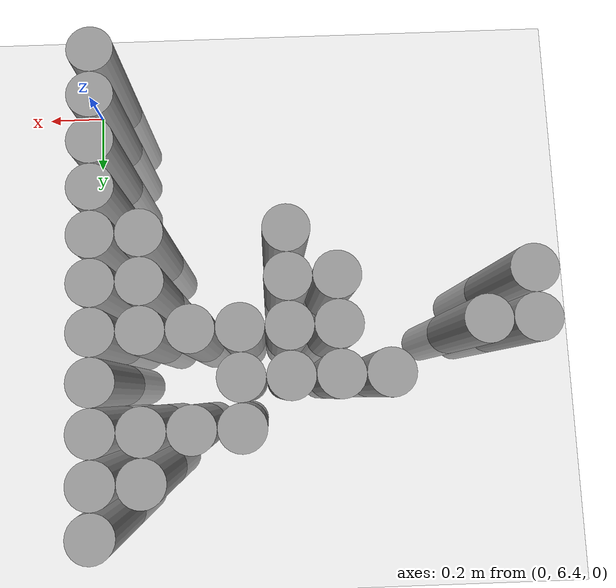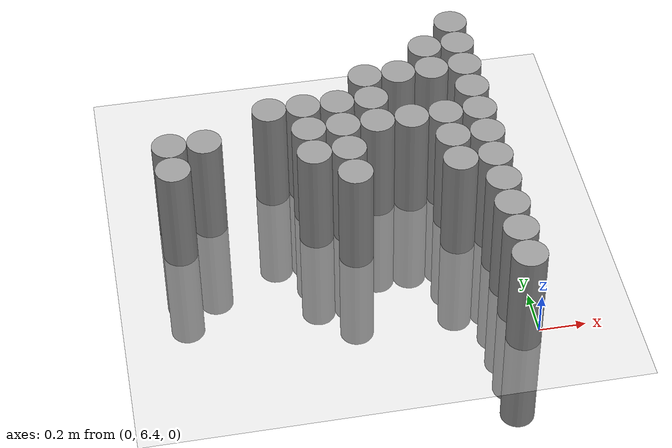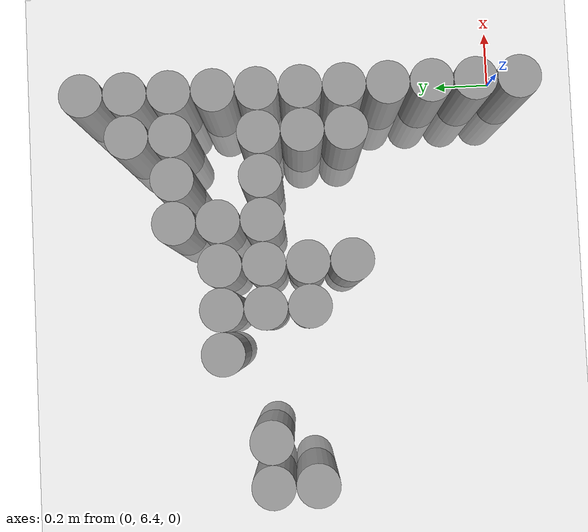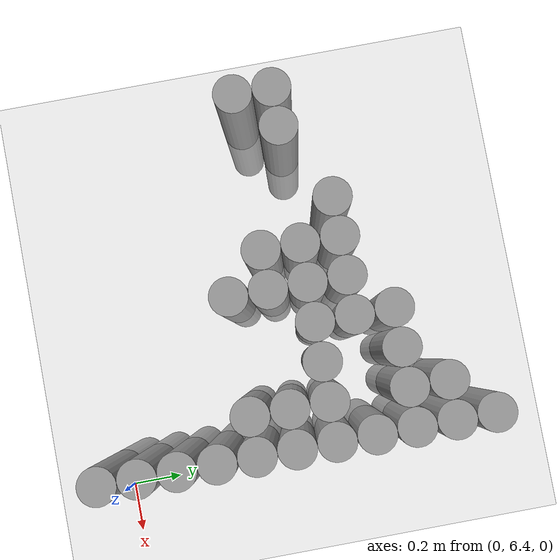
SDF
<sdf version="1.6">
 <world name="default">
  <model name="ground_plane">
   <static>1</static>
   <static>1</static>
   <link name="link">
    <collision name="collision">
     <geometry><plane><normal>0 0 1</normal><size>100 100</size></plane></geometry>
     <surface><friction><ode><mu>100</mu><mu2>50</mu2></ode></friction></surface>
    </collision>
    <visual name="visual">
     <cast_shadows>0</cast_shadows>
     <geometry><plane><normal>0 0 1</normal><size>100 100</size></plane></geometry>
     <material>
      <script><uri>file://media/materials/scripts/gazebo.material</uri><name>Gazebo/Grey</name></script>
     </material>
    </visual>
   </link>
  </model>
  <model name="unit_cylinder_181">
   <static>1</static>
   <pose>-1.425000 7.125000 0.000000 0.000000 0.000000 0.000000</pose>
   <link name="link">
    <inertial>
     <mass>1</mass>
     <inertia><ixx>0.145833</ixx><ixy>0</ixy><ixz>0</ixz><iyy>0.145833</iyy><iyz>0</iyz><izz>0.125</izz></inertia>
    </inertial>
    <collision name="collision">
     <geometry><cylinder><radius>0.075000</radius><length>1</length></cylinder></geometry>
    </collision>
    <visual name="visual">
     <geometry><cylinder><radius>0.075000</radius><length>1</length></cylinder></geometry>
     <material>
      <script><name>Gazebo/Grey</name><uri>file://media/materials/scripts/gazebo.material</uri></script>
     </material>
    </visual>
   </link>
  </model>
  <model name="unit_cylinder_182">
   <static>1</static>
   <pose>-1.425000 7.275000 0.000000 0.000000 0.000000 0.000000</pose>
   <link name="link">
    <inertial>
     <mass>1</mass>
     <inertia><ixx>0.145833</ixx><ixy>0</ixy><ixz>0</ixz><iyy>0.145833</iyy><iyz>0</iyz><izz>0.125</izz></inertia>
    </inertial>
    <collision name="collision">
     <geometry><cylinder><radius>0.075000</radius><length>1</length></cylinder></geometry>
    </collision>
    <visual name="visual">
     <geometry><cylinder><radius>0.075000</radius><length>1</length></cylinder></geometry>
     <material>
      <script><name>Gazebo/Grey</name><uri>file://media/materials/scripts/gazebo.material</uri></script>
     </material>
    </visual>
   </link>
  </model>
  <model name="unit_cylinder_186">
   <static>1</static>
   <pose>-1.275000 7.275000 0.000000 0.000000 0.000000 0.000000</pose>
   <link name="link">
    <inertial>
     <mass>1</mass>
     <inertia><ixx>0.145833</ixx><ixy>0</ixy><ixz>0</ixz><iyy>0.145833</iyy><iyz>0</iyz><izz>0.125</izz></inertia>
    </inertial>
    <collision name="collision">
     <geometry><cylinder><radius>0.075000</radius><length>1</length></cylinder></geometry>
    </collision>
    <visual name="visual">
     <geometry><cylinder><radius>0.075000</radius><length>1</length></cylinder></geometry>
     <material>
      <script><name>Gazebo/Grey</name><uri>file://media/materials/scripts/gazebo.material</uri></script>
     </material>
    </visual>
   </link>
  </model>
  <model name="unit_cylinder_195">
   <static>1</static>
   <pose>-0.975000 7.425000 0.000000 0.000000 0.000000 0.000000</pose>
   <link name="link">
    <inertial>
     <mass>1</mass>
     <inertia><ixx>0.145833</ixx><ixy>0</ixy><ixz>0</ixz><iyy>0.145833</iyy><iyz>0</iyz><izz>0.125</izz></inertia>
    </inertial>
    <collision name="collision">
     <geometry><cylinder><radius>0.075000</radius><length>1</length></cylinder></geometry>
    </collision>
    <visual name="visual">
     <geometry><cylinder><radius>0.075000</radius><length>1</length></cylinder></geometry>
     <material>
      <script><name>Gazebo/Grey</name><uri>file://media/materials/scripts/gazebo.material</uri></script>
     </material>
    </visual>
   </link>
  </model>
  <model name="unit_cylinder_198">
   <static>1</static>
   <pose>-0.825000 7.125000 0.000000 0.000000 0.000000 0.000000</pose>
   <link name="link">
    <inertial>
     <mass>1</mass>
     <inertia><ixx>0.145833</ixx><ixy>0</ixy><ixz>0</ixz><iyy>0.145833</iyy><iyz>0</iyz><izz>0.125</izz></inertia>
    </inertial>
    <collision name="collision">
     <geometry><cylinder><radius>0.075000</radius><length>1</length></cylinder></geometry>
    </collision>
    <visual name="visual">
     <geometry><cylinder><radius>0.075000</radius><length>1</length></cylinder></geometry>
     <material>
      <script><name>Gazebo/Grey</name><uri>file://media/materials/scripts/gazebo.material</uri></script>
     </material>
    </visual>
   </link>
  </model>
  <model name="unit_cylinder_199">
   <static>1</static>
   <pose>-0.825000 7.275000 0.000000 0.000000 0.000000 0.000000</pose>
   <link name="link">
    <inertial>
     <mass>1</mass>
     <inertia><ixx>0.145833</ixx><ixy>0</ixy><ixz>0</ixz><iyy>0.145833</iyy><iyz>0</iyz><izz>0.125</izz></inertia>
    </inertial>
    <collision name="collision">
     <geometry><cylinder><radius>0.075000</radius><length>1</length></cylinder></geometry>
    </collision>
    <visual name="visual">
     <geometry><cylinder><radius>0.075000</radius><length>1</length></cylinder></geometry>
     <material>
      <script><name>Gazebo/Grey</name><uri>file://media/materials/scripts/gazebo.material</uri></script>
     </material>
    </visual>
   </link>
  </model>
  <model name="unit_cylinder_200">
   <static>1</static>
   <pose>-0.825000 7.425000 0.000000 0.000000 0.000000 0.000000</pose>
   <link name="link">
    <inertial>
     <mass>1</mass>
     <inertia><ixx>0.145833</ixx><ixy>0</ixy><ixz>0</ixz><iyy>0.145833</iyy><iyz>0</iyz><izz>0.125</izz></inertia>
    </inertial>
    <collision name="collision">
     <geometry><cylinder><radius>0.075000</radius><length>1</length></cylinder></geometry>
    </collision>
    <visual name="visual">
     <geometry><cylinder><radius>0.075000</radius><length>1</length></cylinder></geometry>
     <material>
      <script><name>Gazebo/Grey</name><uri>file://media/materials/scripts/gazebo.material</uri></script>
     </material>
    </visual>
   </link>
  </model>
  <model name="unit_cylinder_201">
   <static>1</static>
   <pose>-0.675000 6.975000 0.000000 0.000000 0.000000 0.000000</pose>
   <link name="link">
    <inertial>
     <mass>1</mass>
     <inertia><ixx>0.145833</ixx><ixy>0</ixy><ixz>0</ixz><iyy>0.145833</iyy><iyz>0</iyz><izz>0.125</izz></inertia>
    </inertial>
    <collision name="collision">
     <geometry><cylinder><radius>0.075000</radius><length>1</length></cylinder></geometry>
    </collision>
    <visual name="visual">
     <geometry><cylinder><radius>0.075000</radius><length>1</length></cylinder></geometry>
     <material>
      <script><name>Gazebo/Grey</name><uri>file://media/materials/scripts/gazebo.material</uri></script>
     </material>
    </visual>
   </link>
  </model>
  <model name="unit_cylinder_202">
   <static>1</static>
   <pose>-0.675000 7.125000 0.000000 0.000000 0.000000 0.000000</pose>
   <link name="link">
    <inertial>
     <mass>1</mass>
     <inertia><ixx>0.145833</ixx><ixy>0</ixy><ixz>0</ixz><iyy>0.145833</iyy><iyz>0</iyz><izz>0.125</izz></inertia>
    </inertial>
    <collision name="collision">
     <geometry><cylinder><radius>0.075000</radius><length>1</length></cylinder></geometry>
    </collision>
    <visual name="visual">
     <geometry><cylinder><radius>0.075000</radius><length>1</length></cylinder></geometry>
     <material>
      <script><name>Gazebo/Grey</name><uri>file://media/materials/scripts/gazebo.material</uri></script>
     </material>
    </visual>
   </link>
  </model>
  <model name="unit_cylinder_203">
   <static>1</static>
   <pose>-0.675000 7.275000 0.000000 0.000000 0.000000 0.000000</pose>
   <link name="link">
    <inertial>
     <mass>1</mass>
     <inertia><ixx>0.145833</ixx><ixy>0</ixy><ixz>0</ixz><iyy>0.145833</iyy><iyz>0</iyz><izz>0.125</izz></inertia>
    </inertial>
    <collision name="collision">
     <geometry><cylinder><radius>0.075000</radius><length>1</length></cylinder></geometry>
    </collision>
    <visual name="visual">
     <geometry><cylinder><radius>0.075000</radius><length>1</length></cylinder></geometry>
     <material>
      <script><name>Gazebo/Grey</name><uri>file://media/materials/scripts/gazebo.material</uri></script>
     </material>
    </visual>
   </link>
  </model>
  <model name="unit_cylinder_204">
   <static>1</static>
   <pose>-0.675000 7.425000 0.000000 0.000000 0.000000 0.000000</pose>
   <link name="link">
    <inertial>
     <mass>1</mass>
     <inertia><ixx>0.145833</ixx><ixy>0</ixy><ixz>0</ixz><iyy>0.145833</iyy><iyz>0</iyz><izz>0.125</izz></inertia>
    </inertial>
    <collision name="collision">
     <geometry><cylinder><radius>0.075000</radius><length>1</length></cylinder></geometry>
    </collision>
    <visual name="visual">
     <geometry><cylinder><radius>0.075000</radius><length>1</length></cylinder></geometry>
     <material>
      <script><name>Gazebo/Grey</name><uri>file://media/materials/scripts/gazebo.material</uri></script>
     </material>
    </visual>
   </link>
  </model>
  <model name="unit_cylinder_205">
   <static>1</static>
   <pose>-0.525000 7.275000 0.000000 0.000000 0.000000 0.000000</pose>
   <link name="link">
    <inertial>
     <mass>1</mass>
     <inertia><ixx>0.145833</ixx><ixy>0</ixy><ixz>0</ixz><iyy>0.145833</iyy><iyz>0</iyz><izz>0.125</izz></inertia>
    </inertial>
    <collision name="collision">
     <geometry><cylinder><radius>0.075000</radius><length>1</length></cylinder></geometry>
    </collision>
    <visual name="visual">
     <geometry><cylinder><radius>0.075000</radius><length>1</length></cylinder></geometry>
     <material>
      <script><name>Gazebo/Grey</name><uri>file://media/materials/scripts/gazebo.material</uri></script>
     </material>
    </visual>
   </link>
  </model>
  <model name="unit_cylinder_206">
   <static>1</static>
   <pose>-0.525000 7.425000 0.000000 0.000000 0.000000 0.000000</pose>
   <link name="link">
    <inertial>
     <mass>1</mass>
     <inertia><ixx>0.145833</ixx><ixy>0</ixy><ixz>0</ixz><iyy>0.145833</iyy><iyz>0</iyz><izz>0.125</izz></inertia>
    </inertial>
    <collision name="collision">
     <geometry><cylinder><radius>0.075000</radius><length>1</length></cylinder></geometry>
    </collision>
    <visual name="visual">
     <geometry><cylinder><radius>0.075000</radius><length>1</length></cylinder></geometry>
     <material>
      <script><name>Gazebo/Grey</name><uri>file://media/materials/scripts/gazebo.material</uri></script>
     </material>
    </visual>
   </link>
  </model>
  <model name="unit_cylinder_207">
   <static>1</static>
   <pose>-0.525000 7.575000 0.000000 0.000000 0.000000 0.000000</pose>
   <link name="link">
    <inertial>
     <mass>1</mass>
     <inertia><ixx>0.145833</ixx><ixy>0</ixy><ixz>0</ixz><iyy>0.145833</iyy><iyz>0</iyz><izz>0.125</izz></inertia>
    </inertial>
    <collision name="collision">
     <geometry><cylinder><radius>0.075000</radius><length>1</length></cylinder></geometry>
    </collision>
    <visual name="visual">
     <geometry><cylinder><radius>0.075000</radius><length>1</length></cylinder></geometry>
     <material>
      <script><name>Gazebo/Grey</name><uri>file://media/materials/scripts/gazebo.material</uri></script>
     </material>
    </visual>
   </link>
  </model>
  <model name="unit_cylinder_210">
   <static>1</static>
   <pose>-0.375000 7.275000 0.000000 0.000000 0.000000 0.000000</pose>
   <link name="link">
    <inertial>
     <mass>1</mass>
     <inertia><ixx>0.145833</ixx><ixy>0</ixy><ixz>0</ixz><iyy>0.145833</iyy><iyz>0</iyz><izz>0.125</izz></inertia>
    </inertial>
    <collision name="collision">
     <geometry><cylinder><radius>0.075000</radius><length>1</length></cylinder></geometry>
    </collision>
    <visual name="visual">
     <geometry><cylinder><radius>0.075000</radius><length>1</length></cylinder></geometry>
     <material>
      <script><name>Gazebo/Grey</name><uri>file://media/materials/scripts/gazebo.material</uri></script>
     </material>
    </visual>
   </link>
  </model>
  <model name="unit_cylinder_211">
   <static>1</static>
   <pose>-0.375000 7.575000 0.000000 0.000000 0.000000 0.000000</pose>
   <link name="link">
    <inertial>
     <mass>1</mass>
     <inertia><ixx>0.145833</ixx><ixy>0</ixy><ixz>0</ixz><iyy>0.145833</iyy><iyz>0</iyz><izz>0.125</izz></inertia>
    </inertial>
    <collision name="collision">
     <geometry><cylinder><radius>0.075000</radius><length>1</length></cylinder></geometry>
    </collision>
    <visual name="visual">
     <geometry><cylinder><radius>0.075000</radius><length>1</length></cylinder></geometry>
     <material>
      <script><name>Gazebo/Grey</name><uri>file://media/materials/scripts/gazebo.material</uri></script>
     </material>
    </visual>
   </link>
  </model>
  <model name="unit_cylinder_217">
   <static>1</static>
   <pose>-0.225000 6.975000 0.000000 0.000000 0.000000 0.000000</pose>
   <link name="link">
    <inertial>
     <mass>1</mass>
     <inertia><ixx>0.145833</ixx><ixy>0</ixy><ixz>0</ixz><iyy>0.145833</iyy><iyz>0</iyz><izz>0.125</izz></inertia>
    </inertial>
    <collision name="collision">
     <geometry><cylinder><radius>0.075000</radius><length>1</length></cylinder></geometry>
    </collision>
    <visual name="visual">
     <geometry><cylinder><radius>0.075000</radius><length>1</length></cylinder></geometry>
     <material>
      <script><name>Gazebo/Grey</name><uri>file://media/materials/scripts/gazebo.material</uri></script>
     </material>
    </visual>
   </link>
  </model>
  <model name="unit_cylinder_218">
   <static>1</static>
   <pose>-0.225000 7.125000 0.000000 0.000000 0.000000 0.000000</pose>
   <link name="link">
    <inertial>
     <mass>1</mass>
     <inertia><ixx>0.145833</ixx><ixy>0</ixy><ixz>0</ixz><iyy>0.145833</iyy><iyz>0</iyz><izz>0.125</izz></inertia>
    </inertial>
    <collision name="collision">
     <geometry><cylinder><radius>0.075000</radius><length>1</length></cylinder></geometry>
    </collision>
    <visual name="visual">
     <geometry><cylinder><radius>0.075000</radius><length>1</length></cylinder></geometry>
     <material>
      <script><name>Gazebo/Grey</name><uri>file://media/materials/scripts/gazebo.material</uri></script>
     </material>
    </visual>
   </link>
  </model>
  <model name="unit_cylinder_219">
   <static>1</static>
   <pose>-0.225000 7.275000 0.000000 0.000000 0.000000 0.000000</pose>
   <link name="link">
    <inertial>
     <mass>1</mass>
     <inertia><ixx>0.145833</ixx><ixy>0</ixy><ixz>0</ixz><iyy>0.145833</iyy><iyz>0</iyz><izz>0.125</izz></inertia>
    </inertial>
    <collision name="collision">
     <geometry><cylinder><radius>0.075000</radius><length>1</length></cylinder></geometry>
    </collision>
    <visual name="visual">
     <geometry><cylinder><radius>0.075000</radius><length>1</length></cylinder></geometry>
     <material>
      <script><name>Gazebo/Grey</name><uri>file://media/materials/scripts/gazebo.material</uri></script>
     </material>
    </visual>
   </link>
  </model>
  <model name="unit_cylinder_220">
   <static>1</static>
   <pose>-0.225000 7.575000 0.000000 0.000000 0.000000 0.000000</pose>
   <link name="link">
    <inertial>
     <mass>1</mass>
     <inertia><ixx>0.145833</ixx><ixy>0</ixy><ixz>0</ixz><iyy>0.145833</iyy><iyz>0</iyz><izz>0.125</izz></inertia>
    </inertial>
    <collision name="collision">
     <geometry><cylinder><radius>0.075000</radius><length>1</length></cylinder></geometry>
    </collision>
    <visual name="visual">
     <geometry><cylinder><radius>0.075000</radius><length>1</length></cylinder></geometry>
     <material>
      <script><name>Gazebo/Grey</name><uri>file://media/materials/scripts/gazebo.material</uri></script>
     </material>
    </visual>
   </link>
  </model>
  <model name="unit_cylinder_221">
   <static>1</static>
   <pose>-0.225000 7.725000 0.000000 0.000000 0.000000 0.000000</pose>
   <link name="link">
    <inertial>
     <mass>1</mass>
     <inertia><ixx>0.145833</ixx><ixy>0</ixy><ixz>0</ixz><iyy>0.145833</iyy><iyz>0</iyz><izz>0.125</izz></inertia>
    </inertial>
    <collision name="collision">
     <geometry><cylinder><radius>0.075000</radius><length>1</length></cylinder></geometry>
    </collision>
    <visual name="visual">
     <geometry><cylinder><radius>0.075000</radius><length>1</length></cylinder></geometry>
     <material>
      <script><name>Gazebo/Grey</name><uri>file://media/materials/scripts/gazebo.material</uri></script>
     </material>
    </visual>
   </link>
  </model>
  <model name="unit_cylinder_237">
   <static>1</static>
   <pose>-0.075000 6.375000 0.000000 0.000000 0.000000 0.000000</pose>
   <link name="link">
    <inertial>
     <mass>1</mass>
     <inertia><ixx>0.145833</ixx><ixy>0</ixy><ixz>0</ixz><iyy>0.145833</iyy><iyz>0</iyz><izz>0.125</izz></inertia>
    </inertial>
    <collision name="collision">
     <geometry><cylinder><radius>0.075000</radius><length>1</length></cylinder></geometry>
    </collision>
    <visual name="visual">
     <geometry><cylinder><radius>0.075000</radius><length>1</length></cylinder></geometry>
     <material>
      <script><name>Gazebo/Grey</name><uri>file://media/materials/scripts/gazebo.material</uri></script>
     </material>
    </visual>
   </link>
  </model>
  <model name="unit_cylinder_238">
   <static>1</static>
   <pose>-0.075000 6.525000 0.000000 0.000000 0.000000 0.000000</pose>
   <link name="link">
    <inertial>
     <mass>1</mass>
     <inertia><ixx>0.145833</ixx><ixy>0</ixy><ixz>0</ixz><iyy>0.145833</iyy><iyz>0</iyz><izz>0.125</izz></inertia>
    </inertial>
    <collision name="collision">
     <geometry><cylinder><radius>0.075000</radius><length>1</length></cylinder></geometry>
    </collision>
    <visual name="visual">
     <geometry><cylinder><radius>0.075000</radius><length>1</length></cylinder></geometry>
     <material>
      <script><name>Gazebo/Grey</name><uri>file://media/materials/scripts/gazebo.material</uri></script>
     </material>
    </visual>
   </link>
  </model>
  <model name="unit_cylinder_239">
   <static>1</static>
   <pose>-0.075000 6.675000 0.000000 0.000000 0.000000 0.000000</pose>
   <link name="link">
    <inertial>
     <mass>1</mass>
     <inertia><ixx>0.145833</ixx><ixy>0</ixy><ixz>0</ixz><iyy>0.145833</iyy><iyz>0</iyz><izz>0.125</izz></inertia>
    </inertial>
    <collision name="collision">
     <geometry><cylinder><radius>0.075000</radius><length>1</length></cylinder></geometry>
    </collision>
    <visual name="visual">
     <geometry><cylinder><radius>0.075000</radius><length>1</length></cylinder></geometry>
     <material>
      <script><name>Gazebo/Grey</name><uri>file://media/materials/scripts/gazebo.material</uri></script>
     </material>
    </visual>
   </link>
  </model>
  <model name="unit_cylinder_240">
   <static>1</static>
   <pose>-0.075000 6.825000 0.000000 0.000000 0.000000 0.000000</pose>
   <link name="link">
    <inertial>
     <mass>1</mass>
     <inertia><ixx>0.145833</ixx><ixy>0</ixy><ixz>0</ixz><iyy>0.145833</iyy><iyz>0</iyz><izz>0.125</izz></inertia>
    </inertial>
    <collision name="collision">
     <geometry><cylinder><radius>0.075000</radius><length>1</length></cylinder></geometry>
    </collision>
    <visual name="visual">
     <geometry><cylinder><radius>0.075000</radius><length>1</length></cylinder></geometry>
     <material>
      <script><name>Gazebo/Grey</name><uri>file://media/materials/scripts/gazebo.material</uri></script>
     </material>
    </visual>
   </link>
  </model>
  <model name="unit_cylinder_241">
   <static>1</static>
   <pose>-0.075000 6.975000 0.000000 0.000000 0.000000 0.000000</pose>
   <link name="link">
    <inertial>
     <mass>1</mass>
     <inertia><ixx>0.145833</ixx><ixy>0</ixy><ixz>0</ixz><iyy>0.145833</iyy><iyz>0</iyz><izz>0.125</izz></inertia>
    </inertial>
    <collision name="collision">
     <geometry><cylinder><radius>0.075000</radius><length>1</length></cylinder></geometry>
    </collision>
    <visual name="visual">
     <geometry><cylinder><radius>0.075000</radius><length>1</length></cylinder></geometry>
     <material>
      <script><name>Gazebo/Grey</name><uri>file://media/materials/scripts/gazebo.material</uri></script>
     </material>
    </visual>
   </link>
  </model>
  <model name="unit_cylinder_242">
   <static>1</static>
   <pose>-0.075000 7.125000 0.000000 0.000000 0.000000 0.000000</pose>
   <link name="link">
    <inertial>
     <mass>1</mass>
     <inertia><ixx>0.145833</ixx><ixy>0</ixy><ixz>0</ixz><iyy>0.145833</iyy><iyz>0</iyz><izz>0.125</izz></inertia>
    </inertial>
    <collision name="collision">
     <geometry><cylinder><radius>0.075000</radius><length>1</length></cylinder></geometry>
    </collision>
    <visual name="visual">
     <geometry><cylinder><radius>0.075000</radius><length>1</length></cylinder></geometry>
     <material>
      <script><name>Gazebo/Grey</name><uri>file://media/materials/scripts/gazebo.material</uri></script>
     </material>
    </visual>
   </link>
  </model>
  <model name="unit_cylinder_243">
   <static>1</static>
   <pose>-0.075000 7.275000 0.000000 0.000000 0.000000 0.000000</pose>
   <link name="link">
    <inertial>
     <mass>1</mass>
     <inertia><ixx>0.145833</ixx><ixy>0</ixy><ixz>0</ixz><iyy>0.145833</iyy><iyz>0</iyz><izz>0.125</izz></inertia>
    </inertial>
    <collision name="collision">
     <geometry><cylinder><radius>0.075000</radius><length>1</length></cylinder></geometry>
    </collision>
    <visual name="visual">
     <geometry><cylinder><radius>0.075000</radius><length>1</length></cylinder></geometry>
     <material>
      <script><name>Gazebo/Grey</name><uri>file://media/materials/scripts/gazebo.material</uri></script>
     </material>
    </visual>
   </link>
  </model>
  <model name="unit_cylinder_244">
   <static>1</static>
   <pose>-0.075000 7.425000 0.000000 0.000000 0.000000 0.000000</pose>
   <link name="link">
    <inertial>
     <mass>1</mass>
     <inertia><ixx>0.145833</ixx><ixy>0</ixy><ixz>0</ixz><iyy>0.145833</iyy><iyz>0</iyz><izz>0.125</izz></inertia>
    </inertial>
    <collision name="collision">
     <geometry><cylinder><radius>0.075000</radius><length>1</length></cylinder></geometry>
    </collision>
    <visual name="visual">
     <geometry><cylinder><radius>0.075000</radius><length>1</length></cylinder></geometry>
     <material>
      <script><name>Gazebo/Grey</name><uri>file://media/materials/scripts/gazebo.material</uri></script>
     </material>
    </visual>
   </link>
  </model>
  <model name="unit_cylinder_245">
   <static>1</static>
   <pose>-0.075000 7.575000 0.000000 0.000000 0.000000 0.000000</pose>
   <link name="link">
    <inertial>
     <mass>1</mass>
     <inertia><ixx>0.145833</ixx><ixy>0</ixy><ixz>0</ixz><iyy>0.145833</iyy><iyz>0</iyz><izz>0.125</izz></inertia>
    </inertial>
    <collision name="collision">
     <geometry><cylinder><radius>0.075000</radius><length>1</length></cylinder></geometry>
    </collision>
    <visual name="visual">
     <geometry><cylinder><radius>0.075000</radius><length>1</length></cylinder></geometry>
     <material>
      <script><name>Gazebo/Grey</name><uri>file://media/materials/scripts/gazebo.material</uri></script>
     </material>
    </visual>
   </link>
  </model>
  <model name="unit_cylinder_246">
   <static>1</static>
   <pose>-0.075000 7.725000 0.000000 0.000000 0.000000 0.000000</pose>
   <link name="link">
    <inertial>
     <mass>1</mass>
     <inertia><ixx>0.145833</ixx><ixy>0</ixy><ixz>0</ixz><iyy>0.145833</iyy><iyz>0</iyz><izz>0.125</izz></inertia>
    </inertial>
    <collision name="collision">
     <geometry><cylinder><radius>0.075000</radius><length>1</length></cylinder></geometry>
    </collision>
    <visual name="visual">
     <geometry><cylinder><radius>0.075000</radius><length>1</length></cylinder></geometry>
     <material>
      <script><name>Gazebo/Grey</name><uri>file://media/materials/scripts/gazebo.material</uri></script>
     </material>
    </visual>
   </link>
  </model>
  <model name="unit_cylinder_247">
   <static>1</static>
   <pose>-0.075000 7.875000 0.000000 0.000000 0.000000 0.000000</pose>
   <link name="link">
    <inertial>
     <mass>1</mass>
     <inertia><ixx>0.145833</ixx><ixy>0</ixy><ixz>0</ixz><iyy>0.145833</iyy><iyz>0</iyz><izz>0.125</izz></inertia>
    </inertial>
    <collision name="collision">
     <geometry><cylinder><radius>0.075000</radius><length>1</length></cylinder></geometry>
    </collision>
    <visual name="visual">
     <geometry><cylinder><radius>0.075000</radius><length>1</length></cylinder></geometry>
     <material>
      <script><name>Gazebo/Grey</name><uri>file://media/materials/scripts/gazebo.material</uri></script>
     </material>
    </visual>
   </link>
  </model>
 </world>
</sdf>
